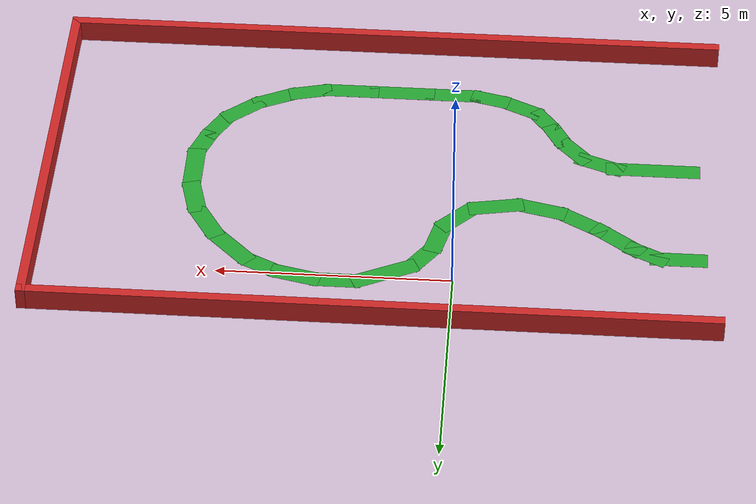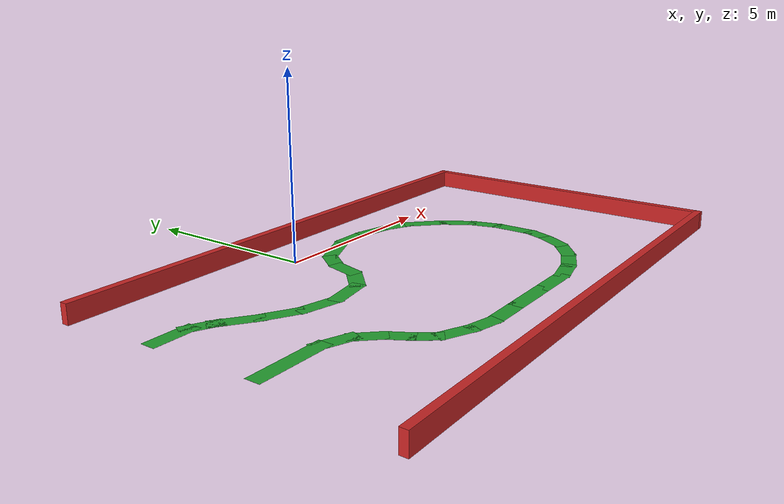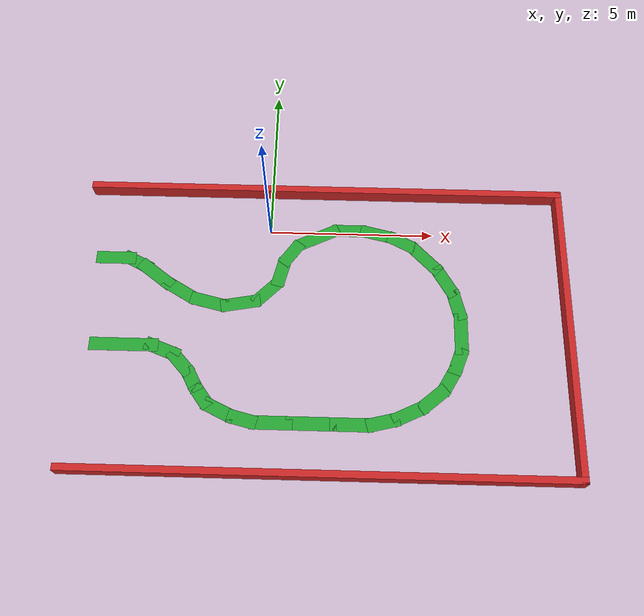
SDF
<?xml version='1.0'?>
<sdf version='1.4'>
  <model name='model'>
    <link name='Wall_10'>
      <collision name='Wall_10_Collision'>
        <geometry>
          <box>
            <size>0.776316 0.4 0</size>
          </box>
        </geometry>
        <pose>0 0 0.000 0 -0 0</pose>
      </collision>
      <visual name='Wall_10_Visual'>
        <pose>0 0 0.0005 0 -0 0</pose>
        <geometry>
          <box>
            <size>0.776316 0.4 0.001</size>
          </box>
        </geometry>
        <material>
          <script>
            <uri>file://media/materials/scripts/gazebo.material</uri>
            <name>Gazebo/Green</name>
          </script>
        </material>
      </visual>
      <velocity_decay>
        <linear>0</linear>
        <angular>0</angular>
      </velocity_decay>
      <pose>-2.073 -4.82209 0 0 0 -1.06031</pose>
    </link>
    <link name='Wall_11'>
      <collision name='Wall_11_Collision'>
        <geometry>
          <box>
            <size>0.775262 0.4 0</size>
          </box>
        </geometry>
        <pose>0 0 0.000 0 -0 0</pose>
      </collision>
      <visual name='Wall_11_Visual'>
        <pose>0 0 0.0005 0 -0 0</pose>
        <geometry>
          <box>
            <size>0.775262 0.4 0.001</size>
          </box>
        </geometry>
        <material>
          <script>
            <uri>file://media/materials/scripts/gazebo.material</uri>
            <name>Gazebo/Green</name>
          </script>
        </material>
      </visual>
      <velocity_decay>
        <linear>0</linear>
        <angular>0</angular>
      </velocity_decay>
      <pose>-1.76124 -5.30482 0 0 0 -0.934288</pose>
    </link>
    <link name='Wall_12'>
      <collision name='Wall_12_Collision'>
        <geometry>
          <box>
            <size>1.00076 0.4 0</size>
          </box>
        </geometry>
        <pose>0 0 0.000 0 -0 0</pose>
      </collision>
      <visual name='Wall_12_Visual'>
        <pose>0 0 0.0005 0 -0 0</pose>
        <geometry>
          <box>
            <size>1.00076 0.4 0.001</size>
          </box>
        </geometry>
        <material>
          <script>
            <uri>file://media/materials/scripts/gazebo.material</uri>
            <name>Gazebo/Green</name>
          </script>
        </material>
      </visual>
      <velocity_decay>
        <linear>0</linear>
        <angular>0</angular>
      </velocity_decay>
      <pose>-1.22823 -5.70709 0 0 0 -0.441179</pose>
    </link>
    <link name='Wall_13'>
      <collision name='Wall_13_Collision'>
        <geometry>
          <box>
            <size>0.863443 0.4 0.0</size>
          </box>
        </geometry>
        <pose>0 0 0.0 0 -0 0</pose>
      </collision>
      <visual name='Wall_13_Visual'>
        <pose>0 0 0.0005 0 -0 0</pose>
        <geometry>
          <box>
            <size>0.863443 0.4 0.001</size>
          </box>
        </geometry>
        <material>
          <script>
            <uri>file://media/materials/scripts/gazebo.material</uri>
            <name>Gazebo/Green</name>
          </script>
        </material>
      </visual>
      <velocity_decay>
        <linear>0</linear>
        <angular>0</angular>
      </velocity_decay>
      <pose>-0.544369 -5.95851 0 0 0 -0.244979</pose>
    </link>
    <link name='Wall_14'>
      <collision name='Wall_14_Collision'>
        <geometry>
          <box>
            <size>1.22579 0.4 0.0</size>
          </box>
        </geometry>
        <pose>0 0 0.0 0 -0 0</pose>
      </collision>
      <visual name='Wall_14_Visual'>
        <pose>0 0 0.0005 0 -0 0</pose>
        <geometry>
          <box>
            <size>1.22579 0.4 0.001</size>
          </box>
        </geometry>
        <material>
          <script>
            <uri>file://media/materials/scripts/gazebo.material</uri>
            <name>Gazebo/Green</name>
          </script>
        </material>
      </visual>
      <velocity_decay>
        <linear>0</linear>
        <angular>0</angular>
      </velocity_decay>
      <pose>0.290345 -6.03896 0 0 -0 0</pose>
    </link>
    <link name='Wall_15'>
      <collision name='Wall_15_Collision'>
        <geometry>
          <box>
            <size>1.44704 0.4 0.0</size>
          </box>
        </geometry>
        <pose>0 0 0.0 0 -0 0</pose>
      </collision>
      <visual name='Wall_15_Visual'>
        <pose>0 0 0.0005 0 -0 0</pose>
        <geometry>
          <box>
            <size>1.44704 0.4 0.001</size>
          </box>
        </geometry>
        <material>
          <script>
            <uri>file://media/materials/scripts/gazebo.material</uri>
            <name>Gazebo/Green</name>
          </script>
        </material>
      </visual>
      <velocity_decay>
        <linear>0</linear>
        <angular>0</angular>
      </velocity_decay>
      <pose>1.42676 -6.03896 0 0 -0 0</pose>
    </link>
    <link name='Wall_16'>
      <collision name='Wall_16_Collision'>
        <geometry>
          <box>
            <size>1.24591 0.4 0.0</size>
          </box>
        </geometry>
        <pose>0 0 0.0 0 -0 0</pose>
      </collision>
      <visual name='Wall_16_Visual'>
        <pose>0 0 0.0005 0 -0 0</pose>
        <geometry>
          <box>
            <size>1.24591 0.4 0.001</size>
          </box>
        </geometry>
        <material>
          <script>
            <uri>file://media/materials/scripts/gazebo.material</uri>
            <name>Gazebo/Green</name>
          </script>
        </material>
      </visual>
      <velocity_decay>
        <linear>0</linear>
        <angular>0</angular>
      </velocity_decay>
      <pose>2.57323 -6.03896 0 0 -0 0</pose>
    </link>
    <link name='Wall_17'>
      <collision name='Wall_17_Collision'>
        <geometry>
          <box>
            <size>0.965902 0.4 0.0</size>
          </box>
        </geometry>
        <pose>0 0 0.0 0 -0 0</pose>
      </collision>
      <visual name='Wall_17_Visual'>
        <pose>0 0 0.0005 0 -0 0</pose>
        <geometry>
          <box>
            <size>0.965902 0.4 0.001</size>
          </box>
        </geometry>
        <material>
          <script>
            <uri>file://media/materials/scripts/gazebo.material</uri>
            <name>Gazebo/Green</name>
          </script>
        </material>
      </visual>
      <velocity_decay>
        <linear>0</linear>
        <angular>0</angular>
      </velocity_decay>
      <pose>3.46829 -5.94845 0 0 -0 0.238609</pose>
    </link>
    <link name='Wall_18'>
      <collision name='Wall_18_Collision'>
        <geometry>
          <box>
            <size>1.04573 0.4 0.0</size>
          </box>
        </geometry>
        <pose>0 0 0.0 0 -0 0</pose>
      </collision>
      <visual name='Wall_18_Visual'>
        <pose>0 0 0.0005 0 -0 0</pose>
        <geometry>
          <box>
            <size>1.04573 0.4 0.001</size>
          </box>
        </geometry>
        <material>
          <script>
            <uri>file://media/materials/scripts/gazebo.material</uri>
            <name>Gazebo/Green</name>
          </script>
        </material>
      </visual>
      <velocity_decay>
        <linear>0</linear>
        <angular>0</angular>
      </velocity_decay>
      <pose>4.22255 -5.67692 0 0 -0 0.442374</pose>
    </link>
    <link name='Wall_19'>
      <collision name='Wall_19_Collision'>
        <geometry>
          <box>
            <size>1.01379 0.4 0.0</size>
          </box>
        </geometry>
        <pose>0 0 0.0 0 -0 0</pose>
      </collision>
      <visual name='Wall_19_Visual'>
        <pose>0 0 0.0005 0 -0 0</pose>
        <geometry>
          <box>
            <size>1.01379 0.4 0.001</size>
          </box>
        </geometry>
        <material>
          <script>
            <uri>file://media/materials/scripts/gazebo.material</uri>
            <name>Gazebo/Green</name>
          </script>
        </material>
      </visual>
      <velocity_decay>
        <linear>0</linear>
        <angular>0</angular>
      </velocity_decay>
      <pose>4.91647 -5.23442 0 0 -0 0.697903</pose>
    </link>
    <link name='Wall_2'>
      <collision name='Wall_2_Collision'>
        <geometry>
          <box>
            <size>14.6818 0.2 0.5</size>
          </box>
        </geometry>
        <pose>0 0 0.25 0 -0 0</pose>
      </collision>
      <visual name='Wall_2_Visual'>
        <pose>0 0 0.25 0 -0 0</pose>
        <geometry>
          <box>
            <size>14.6818 0.2 0.5</size>
          </box>
        </geometry>
        <material>
          <script>
            <uri>file://media/materials/scripts/gazebo.material</uri>
            <name>Gazebo/Red</name>
          </script>
        </material>
      </visual>
      <velocity_decay>
        <linear>0</linear>
        <angular>0</angular>
      </velocity_decay>
      <pose>1.66812 1.30249 0 0 -0 0</pose>
    </link>
    <link name='Wall_20'>
      <collision name='Wall_20_Collision'>
        <geometry>
          <box>
            <size>0.893554 0.4 0.0</size>
          </box>
        </geometry>
        <pose>0 0 0.0 0 -0 0</pose>
      </collision>
      <visual name='Wall_20_Visual'>
        <pose>0 0 0.0005 0 -0 0</pose>
        <geometry>
          <box>
            <size>0.893554 0.4 0.001</size>
          </box>
        </geometry>
        <material>
          <script>
            <uri>file://media/materials/scripts/gazebo.material</uri>
            <name>Gazebo/Green</name>
          </script>
        </material>
      </visual>
      <velocity_decay>
        <linear>0</linear>
        <angular>0</angular>
      </velocity_decay>
      <pose>5.39919 -4.67124 0 0 -0 1.05525</pose>
    </link>
    <link name='Wall_21'>
      <collision name='Wall_21_Collision'>
        <geometry>
          <box>
            <size>0.842691 0.4 0.0</size>
          </box>
        </geometry>
        <pose>0 0 0.0 0 -0 0</pose>
      </collision>
      <visual name='Wall_21_Visual'>
        <pose>0 0 0.0005 0 -0 0</pose>
        <geometry>
          <box>
            <size>0.842691 0.4 0.001</size>
          </box>
        </geometry>
        <material>
          <script>
            <uri>file://media/materials/scripts/gazebo.material</uri>
            <name>Gazebo/Green</name>
          </script>
        </material>
      </visual>
      <velocity_decay>
        <linear>0</linear>
        <angular>0</angular>
      </velocity_decay>
      <pose>5.68078 -4.06783 0 0 -0 1.21935</pose>
    </link>
    <link name='Wall_22'>
      <collision name='Wall_22_Collision'>
        <geometry>
          <box>
            <size>1.28613 0.4 0.0</size>
          </box>
        </geometry>
        <pose>0 0 0.0 0 -0 0</pose>
      </collision>
      <visual name='Wall_22_Visual'>
        <pose>0 0 0.0005 0 -0 0</pose>
        <geometry>
          <box>
            <size>1.28613 0.4 0.001</size>
          </box>
        </geometry>
        <material>
          <script>
            <uri>file://media/materials/scripts/gazebo.material</uri>
            <name>Gazebo/Green</name>
          </script>
        </material>
      </visual>
      <velocity_decay>
        <linear>0</linear>
        <angular>0</angular>
      </velocity_decay>
      <pose>5.79141 -3.22306 0 0 -0 1.5708</pose>
    </link>
    <link name='Wall_23'>
      <collision name='Wall_23_Collision'>
        <geometry>
          <box>
            <size>0.990338 0.4 0.0</size>
          </box>
        </geometry>
        <pose>0 0 0.0 0 -0 0</pose>
      </collision>
      <visual name='Wall_23_Visual'>
        <pose>0 0 0.0005 0 -0 0</pose>
        <geometry>
          <box>
            <size>0.990338 0.4 0.001</size>
          </box>
        </geometry>
        <material>
          <script>
            <uri>file://media/materials/scripts/gazebo.material</uri>
            <name>Gazebo/Green</name>
          </script>
        </material>
      </visual>
      <velocity_decay>
        <linear>0</linear>
        <angular>0</angular>
      </velocity_decay>
      <pose>5.69084 -2.29784 0 0 -0 1.82812</pose>
    </link>
    <link name='Wall_24'>
      <collision name='Wall_24_Collision'>
        <geometry>
          <box>
            <size>1.09341 0.4 0.0</size>
          </box>
        </geometry>
        <pose>0 0 0 0 -0 0</pose>
      </collision>
      <visual name='Wall_24_Visual'>
        <pose>0 0 0.0005 0 -0 0</pose>
        <geometry>
          <box>
            <size>1.09341 0.4 0.001</size>
          </box>
        </geometry>
        <material>
          <script>
            <uri>file://media/materials/scripts/gazebo.material</uri>
            <name>Gazebo/Green</name>
          </script>
        </material>
      </visual>
      <velocity_decay>
        <linear>0</linear>
        <angular>0</angular>
      </velocity_decay>
      <pose>5.35897 -1.53352 0 0 -0 2.11508</pose>
    </link>
    <link name='Wall_25'>
      <collision name='Wall_25_Collision'>
        <geometry>
          <box>
            <size>1.25246 0.4 0.0</size>
          </box>
        </geometry>
        <pose>0 0 0 0 -0 0</pose>
      </collision>
      <visual name='Wall_25_Visual'>
        <pose>0 0 0.0005 0 -0 0</pose>
        <geometry>
          <box>
            <size>1.25246 0.4 0.001</size>
          </box>
        </geometry>
        <material>
          <script>
            <uri>file://media/materials/scripts/gazebo.material</uri>
            <name>Gazebo/Green</name>
          </script>
        </material>
      </visual>
      <velocity_decay>
        <linear>0</linear>
        <angular>0</angular>
      </velocity_decay>
      <pose>4.75556 -0.779263 0 0 -0 2.35619</pose>
    </link>
    <link name='Wall_26'>
      <collision name='Wall_26_Collision'>
        <geometry>
          <box>
            <size>0.919605 0.4 0.0</size>
          </box>
        </geometry>
        <pose>0 0 0 0 -0 0</pose>
      </collision>
      <visual name='Wall_26_Visual'>
        <pose>0 0 0.0005 0 -0 0</pose>
        <geometry>
          <box>
            <size>0.919605 0.4 0.001</size>
          </box>
        </geometry>
        <material>
          <script>
            <uri>file://media/materials/scripts/gazebo.material</uri>
            <name>Gazebo/Green</name>
          </script>
        </material>
      </visual>
      <velocity_decay>
        <linear>0</linear>
        <angular>0</angular>
      </velocity_decay>
      <pose>4.06164 -0.246254 0 0 -0 2.67794</pose>
    </link>
    <link name='Wall_27'>
      <collision name='Wall_27_Collision'>
        <geometry>
          <box>
            <size>1.08796 0.4 0.0</size>
          </box>
        </geometry>
        <pose>0 0 0 0 -0 0</pose>
      </collision>
      <visual name='Wall_27_Visual'>
        <pose>0 0 0.0005 0 -0 0</pose>
        <geometry>
          <box>
            <size>1.08796 0.4 0.001</size>
          </box>
        </geometry>
        <material>
          <script>
            <uri>file://media/materials/scripts/gazebo.material</uri>
            <name>Gazebo/Green</name>
          </script>
        </material>
      </visual>
      <velocity_decay>
        <linear>0</linear>
        <angular>0</angular>
      </velocity_decay>
      <pose>3.30738 0.015223 0 0 -0 2.9131</pose>
    </link>
    <link name='Wall_28'>
      <collision name='Wall_28_Collision'>
        <geometry>
          <box>
            <size>1.06488 0.4 0.0</size>
          </box>
        </geometry>
        <pose>0 0 0 0 -0 0</pose>
      </collision>
      <visual name='Wall_28_Visual'>
        <pose>0 0 0.0005 0 -0 0</pose>
        <geometry>
          <box>
            <size>1.06488 0.4 0.001</size>
          </box>
        </geometry>
        <material>
          <script>
            <uri>file://media/materials/scripts/gazebo.material</uri>
            <name>Gazebo/Green</name>
          </script>
        </material>
      </visual>
      <velocity_decay>
        <linear>0</linear>
        <angular>0</angular>
      </velocity_decay>
      <pose>2.4425 0.115791 0 0 -0 3.14159</pose>
    </link>
    <link name='Wall_29'>
      <collision name='Wall_29_Collision'>
        <geometry>
          <box>
            <size>1.46859 0.4 0.0</size>
          </box>
        </geometry>
        <pose>0 0 0 0 -0 0</pose>
      </collision>
      <visual name='Wall_29_Visual'>
        <pose>0 0 0.0005 0 -0 0</pose>
        <geometry>
          <box>
            <size>1.46859 0.4 0.001</size>
          </box>
        </geometry>
        <material>
          <script>
            <uri>file://media/materials/scripts/gazebo.material</uri>
            <name>Gazebo/Green</name>
          </script>
        </material>
      </visual>
      <velocity_decay>
        <linear>0</linear>
        <angular>0</angular>
      </velocity_decay>
      <pose>1.43682 -0.155743 0 0 0 -2.69922</pose>
    </link>
    <link name='Wall_3'>
      <collision name='Wall_3_Collision'>
        <geometry>
          <box>
            <size>9.02986 0.2 0.5</size>
          </box>
        </geometry>
        <pose>0 0 0.25 0 -0 0</pose>
      </collision>
      <visual name='Wall_3_Visual'>
        <pose>0 0 0.25 0 -0 0</pose>
        <geometry>
          <box>
            <size>9.02986 0.2 0.5</size>
          </box>
        </geometry>
        <material>
          <script>
            <uri>file://media/materials/scripts/gazebo.material</uri>
            <name>Gazebo/Red</name>
          </script>
        </material>
      </visual>
      <velocity_decay>
        <linear>0</linear>
        <angular>0</angular>
      </velocity_decay>
      <pose>8.90901 -3.11225 0 0 0 -1.5708</pose>
    </link>
    <link name='Wall_30'>
      <collision name='Wall_30_Collision'>
        <geometry>
          <box>
            <size>0.892094 0.4 0.0</size>
          </box>
        </geometry>
        <pose>0 0 0 0 -0 0</pose>
      </collision>
      <visual name='Wall_30_Visual'>
        <pose>0 0 0.0005 0 -0 0</pose>
        <geometry>
          <box>
            <size>0.892094 0.4 0.001</size>
          </box>
        </geometry>
        <material>
          <script>
            <uri>file://media/materials/scripts/gazebo.material</uri>
            <name>Gazebo/Green</name>
          </script>
        </material>
      </visual>
      <velocity_decay>
        <linear>0</linear>
        <angular>0</angular>
      </velocity_decay>
      <pose>0.662446 -0.708866 0 0 0 -2.19105</pose>
    </link>
    <link name='Wall_31'>
      <collision name='Wall_31_Collision'>
        <geometry>
          <box>
            <size>0.946373 0.4 0.0</size>
          </box>
        </geometry>
        <pose>0 0 0 0 -0 0</pose>
      </collision>
      <visual name='Wall_31_Visual'>
        <pose>0 0 0.0005 0 -0 0</pose>
        <geometry>
          <box>
            <size>0.946373 0.4 0.001</size>
          </box>
        </geometry>
        <material>
          <script>
            <uri>file://media/materials/scripts/gazebo.material</uri>
            <name>Gazebo/Green</name>
          </script>
        </material>
      </visual>
      <velocity_decay>
        <linear>0</linear>
        <angular>0</angular>
      </velocity_decay>
      <pose>0.370799 -1.3525 0 0 0 -1.81577</pose>
    </link>
    <link name='Wall_32'>
      <collision name='Wall_32_Collision'>
        <geometry>
          <box>
            <size>1.05335 0.4 0.0</size>
          </box>
        </geometry>
        <pose>0 0 0 0 -0 0</pose>
      </collision>
      <visual name='Wall_32_Visual'>
        <pose>0 0 0.0005 0 -0 0</pose>
        <geometry>
          <box>
            <size>1.05335 0.4 0.001</size>
          </box>
        </geometry>
        <material>
          <script>
            <uri>file://media/materials/scripts/gazebo.material</uri>
            <name>Gazebo/Green</name>
          </script>
        </material>
      </visual>
      <velocity_decay>
        <linear>0</linear>
        <angular>0</angular>
      </velocity_decay>
      <pose>-0.021416 -2.01625 0 0 0 -2.35619</pose>
    </link>
    <link name='Wall_33'>
      <collision name='Wall_33_Collision'>
        <geometry>
          <box>
            <size>1.20205 0.4 0.0</size>
          </box>
        </geometry>
        <pose>0 0 0 0 -0 0</pose>
      </collision>
      <visual name='Wall_33_Visual'>
        <pose>0 0 0.0005 0 -0 0</pose>
        <geometry>
          <box>
            <size>1.20205 0.4 0.001</size>
          </box>
        </geometry>
        <material>
          <script>
            <uri>file://media/materials/scripts/gazebo.material</uri>
            <name>Gazebo/Green</name>
          </script>
        </material>
      </visual>
      <velocity_decay>
        <linear>0</linear>
        <angular>0</angular>
      </velocity_decay>
      <pose>-0.815902 -2.40846 0 0 0 -2.95994</pose>
    </link>
    <link name='Wall_34'>
      <collision name='Wall_34_Collision'>
        <geometry>
          <box>
            <size>1.15131 0.4 0.0</size>
          </box>
        </geometry>
        <pose>0 0 0 0 -0 0</pose>
      </collision>
      <visual name='Wall_34_Visual'>
        <pose>0 0 0.0005 0 -0 0</pose>
        <geometry>
          <box>
            <size>1.15131 0.4 0.001</size>
          </box>
        </geometry>
        <material>
          <script>
            <uri>file://media/materials/scripts/gazebo.material</uri>
            <name>Gazebo/Green</name>
          </script>
        </material>
      </visual>
      <velocity_decay>
        <linear>0</linear>
        <angular>0</angular>
      </velocity_decay>
      <pose>-1.7713 -2.38835 0 0 -0 2.90687</pose>
    </link>
    <link name='Wall_35'>
      <collision name='Wall_35_Collision'>
        <geometry>
          <box>
            <size>1.20043 0.4 0.0</size>
          </box>
        </geometry>
        <pose>0 0 0 0 -0 0</pose>
      </collision>
      <visual name='Wall_35_Visual'>
        <pose>0 0 0.0005 0 -0 0</pose>
        <geometry>
          <box>
            <size>1.20043 0.4 0.001</size>
          </box>
        </geometry>
        <material>
          <script>
            <uri>file://media/materials/scripts/gazebo.material</uri>
            <name>Gazebo/Green</name>
          </script>
        </material>
      </visual>
      <velocity_decay>
        <linear>0</linear>
        <angular>0</angular>
      </velocity_decay>
      <pose>-2.66635 -2.0263 0 0 -0 2.61497</pose>
    </link>
    <link name='Wall_36'>
      <collision name='Wall_36_Collision'>
        <geometry>
          <box>
            <size>1.27711 0.4 0.0</size>
          </box>
        </geometry>
        <pose>0 0 0 0 -0 0</pose>
      </collision>
      <visual name='Wall_36_Visual'>
        <pose>0 0 0.0005 0 -0 0</pose>
        <geometry>
          <box>
            <size>1.27711 0.4 0.001</size>
          </box>
        </geometry>
        <material>
          <script>
            <uri>file://media/materials/scripts/gazebo.material</uri>
            <name>Gazebo/Green</name>
          </script>
        </material>
      </visual>
      <velocity_decay>
        <linear>0</linear>
        <angular>0</angular>
      </velocity_decay>
      <pose>-3.4509 -1.51344 0 0 -0 2.5029</pose>
    </link>
    <link name='Wall_37'>
      <collision name='Wall_37_Collision'>
        <geometry>
          <box>
            <size>0.984956 0.4 0.0</size>
          </box>
        </geometry>
        <pose>0 0 0 0 -0 0</pose>
      </collision>
      <visual name='Wall_37_Visual'>
        <pose>0 0 0.0005 0 -0 0</pose>
        <geometry>
          <box>
            <size>0.984956 0.4 0.001</size>
          </box>
        </geometry>
        <material>
          <script>
            <uri>file://media/materials/scripts/gazebo.material</uri>
            <name>Gazebo/Green</name>
          </script>
        </material>
      </visual>
      <velocity_decay>
        <linear>0</linear>
        <angular>0</angular>
      </velocity_decay>
      <pose>-4.0645 -1.121 0 0 -0 2.67718</pose>
    </link>
    <link name='Wall_38'>
      <collision name='Wall_38_Collision'>
        <geometry>
          <box>
            <size>1.22438 0.4 0.0</size>
          </box>
        </geometry>
        <pose>0 0 0 0 -0 0</pose>
      </collision>
      <visual name='Wall_38_Visual'>
        <pose>0 0 0.0005 0 -0 0</pose>
        <geometry>
          <box>
            <size>1.22438 0.4 0.001</size>
          </box>
        </geometry>
        <material>
          <script>
            <uri>file://media/materials/scripts/gazebo.material</uri>
            <name>Gazebo/Green</name>
          </script>
        </material>
      </visual>
      <velocity_decay>
        <linear>0</linear>
        <angular>0</angular>
      </velocity_decay>
      <pose>-4.73819 -0.990228 0 0 0 -3.14104</pose>
    </link>
    <link name='Wall_4'>
      <collision name='Wall_4_Collision'>
        <geometry>
          <box>
            <size>14.6013 0.2 0.5</size>
          </box>
        </geometry>
        <pose>0 0 0.25 0 -0 0</pose>
      </collision>
      <visual name='Wall_4_Visual'>
        <pose>0 0 0.25 0 -0 0</pose>
        <geometry>
          <box>
            <size>14.6013 0.2 0.5</size>
          </box>
        </geometry>
        <material>
          <script>
            <uri>file://media/materials/scripts/gazebo.material</uri>
            <name>Gazebo/Red</name>
          </script>
        </material>
      </visual>
      <velocity_decay>
        <linear>0</linear>
        <angular>0</angular>
      </velocity_decay>
      <pose>1.7085 -7.527 0 0 -0 3.14159</pose>
    </link>
    <link name='Wall_7'>
      <collision name='Wall_7_Collision'>
        <geometry>
          <box>
            <size>2.05 0.4 0.0</size>
          </box>
        </geometry>
        <pose>0 0 0 0 -0 0</pose>
      </collision>
      <visual name='Wall_7_Visual'>
        <pose>0 0 0.0005 0 -0 0</pose>
        <geometry>
          <box>
            <size>2.05 0.4 0.001</size>
          </box>
        </geometry>
        <material>
          <script>
            <uri>file://media/materials/scripts/gazebo.material</uri>
            <name>Gazebo/Green</name>
          </script>
        </material>
      </visual>
      <velocity_decay>
        <linear>0</linear>
        <angular>0</angular>
      </velocity_decay>
      <pose>-4.175 -3.8 0 0 -0 0</pose>
    </link>
    <link name='Wall_8'>
      <collision name='Wall_8_Collision'>
        <geometry>
          <box>
            <size>1.09886 0.4 0.0</size>
          </box>
        </geometry>
        <pose>0 0 0 0 -0 0</pose>
      </collision>
      <visual name='Wall_8_Visual'>
        <pose>0 0 0.0005 0 -0 0</pose>
        <geometry>
          <box>
            <size>1.09886 0.4 0.001</size>
          </box>
        </geometry>
        <material>
          <script>
            <uri>file://media/materials/scripts/gazebo.material</uri>
            <name>Gazebo/Green</name>
          </script>
        </material>
      </visual>
      <velocity_decay>
        <linear>0</linear>
        <angular>0</angular>
      </velocity_decay>
      <pose>-3.02326 -3.92386 0 0 0 -0.36234</pose>
    </link>
    <link name='Wall_9'>
      <collision name='Wall_9_Collision'>
        <geometry>
          <box>
            <size>0.911691 0.4 0.0</size>
          </box>
        </geometry>
        <pose>0 0 0 0 -0 0</pose>
      </collision>
      <visual name='Wall_9_Visual'>
        <pose>0 0 0.0005 0 -0 0</pose>
        <geometry>
          <box>
            <size>0.911691 0.4 0.001</size>
          </box>
        </geometry>
        <material>
          <script>
            <uri>file://media/materials/scripts/gazebo.material</uri>
            <name>Gazebo/Green</name>
          </script>
        </material>
      </visual>
      <velocity_decay>
        <linear>0</linear>
        <angular>0</angular>
      </velocity_decay>
      <pose>-2.45516 -4.30919 0 0 0 -0.825377</pose>
    </link>
    <static>1</static>
  </model>
</sdf>
